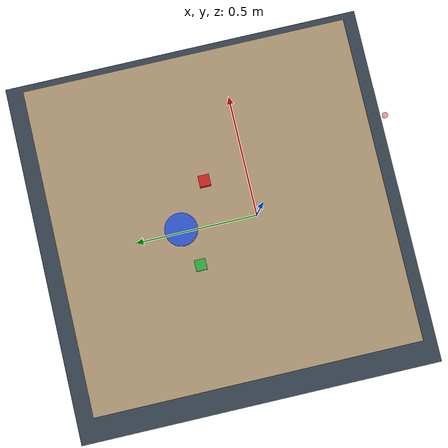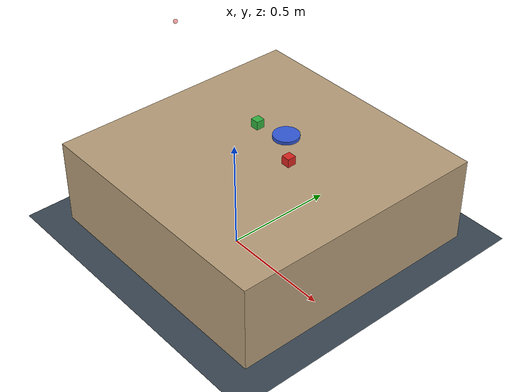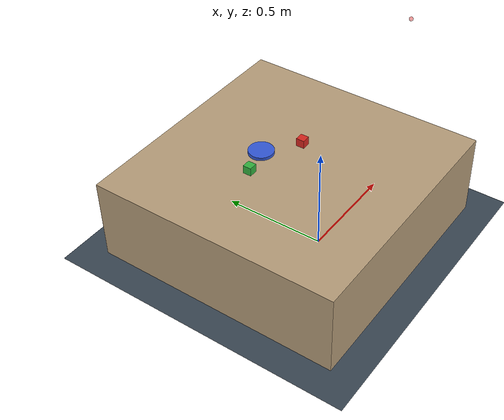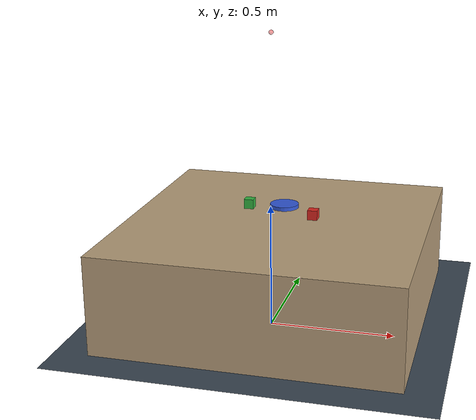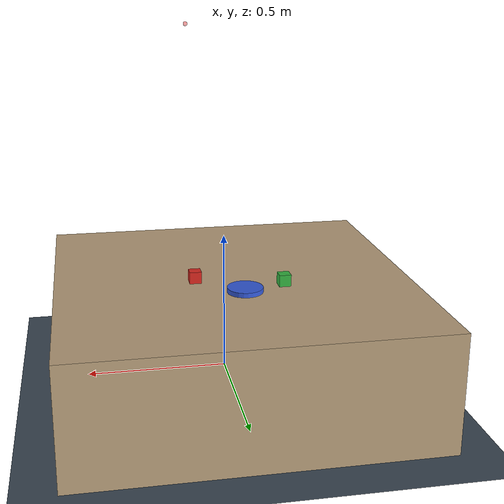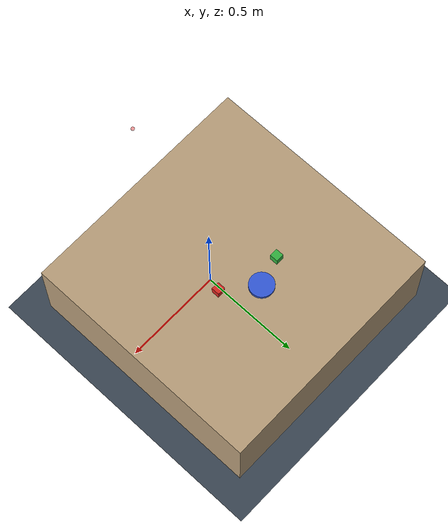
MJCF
<mujoco model="tabletop_panda">
  <compiler angle="radian" autolimits="true" meshdir="panda/assets"/>
  <option timestep="0.002" integrator="implicitfast"/>

  <include file="panda/panda.xml"/>

  <visual>
    <global offwidth="640" offheight="480"/>
    <headlight ambient="0.4 0.4 0.4" diffuse="0.7 0.7 0.7"/>
    <quality shadowsize="2048"/>
  </visual>

  <asset>
    <texture name="grid" type="2d" builtin="checker" rgb1="0.20 0.25 0.30" rgb2="0.25 0.30 0.35"
             width="300" height="300"/>
    <material name="grid" texture="grid" texrepeat="6 6" reflectance="0.05"/>
    <material name="table" rgba="0.72 0.62 0.48 1"/>
  </asset>

  <default>
    <default class="object">
      <geom mass="0.05" friction="1.5 0.1 0.01" solimp="0.97 0.995 0.001"/>
    </default>
  </default>

  <worldbody>
    <light pos="0.3 -0.4 1.9" dir="-0.2 0.3 -1" diffuse="0.8 0.8 0.8"/>
    <geom name="floor" type="plane" size="3 3 0.05" material="grid"/>

    <!-- Surface at z=0.40, matching the workspace the task family is written against. -->
    <geom name="table" type="box" size="0.60 0.60 0.20" pos="0 0.15 0.20" material="table"/>

    <camera name="front" pos="0 0.02 1.42" xyaxes="1 0 0  0 0.966 0.259" fovy="52"/>

    <body name="red_cube" pos="0.13 0.18 0.42">
      <freejoint name="red_cube"/>
      <geom class="object" name="red_cube" type="box" size="0.02 0.02 0.02" rgba="0.85 0.15 0.12 1"/>
    </body>

    <body name="green_cube" pos="-0.16 0.26 0.42">
      <freejoint name="green_cube"/>
      <geom class="object" name="green_cube" type="box" size="0.02 0.02 0.02" rgba="0.20 0.70 0.25 1"/>
    </body>

    <body name="blue_plate" pos="-0.02 0.30 0.408">
      <freejoint name="blue_plate"/>
      <geom class="object" name="blue_plate" type="cylinder" size="0.06 0.008"
            rgba="0.20 0.35 0.85 1" mass="0.3"/>
    </body>
  </worldbody>

  <keyframe>
    <key name="home"
         qpos="1.5708 -0.35 0 -2.20 0 1.90 0.785  0.04 0.04
               0.13 0.18 0.42 1 0 0 0
               -0.16 0.26 0.42 1 0 0 0
               -0.02 0.30 0.408 1 0 0 0"
         ctrl="1.5708 -0.35 0 -2.20 0 1.90 0.785  255"/>
  </keyframe>
</mujoco>

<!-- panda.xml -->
<mujoco model="panda">
  <option integrator="implicitfast" />
  <default>
    <default class="panda">
      <material specular="0.5" shininess="0.25" />
      <joint armature="0.1" damping="1" axis="0 0 1" range="-2.8973 2.8973" />
      <general dyntype="none" biastype="affine" ctrlrange="-2.8973 2.8973" forcerange="-87 87" />
      <default class="finger">
        <joint axis="0 1 0" type="slide" range="0 0.04" damping="20" />
      </default>
      <default class="visual">
        <geom type="mesh" contype="0" conaffinity="0" group="2" />
      </default>
      <default class="collision">
        <geom type="mesh" group="3" />
        <default class="fingertip_pad_collision_1">
          <geom type="box" size="0.0085 0.004 0.0085" pos="0 0.0055 0.0445" friction="2.5 0.2 0.01" solimp="0.97 0.995 0.001" />
        </default>
        <default class="fingertip_pad_collision_2">
          <geom type="box" size="0.003 0.002 0.003" pos="0.0055 0.002 0.05" friction="2.5 0.2 0.01" solimp="0.97 0.995 0.001" />
        </default>
        <default class="fingertip_pad_collision_3">
          <geom type="box" size="0.003 0.002 0.003" pos="-0.0055 0.002 0.05" friction="2.5 0.2 0.01" solimp="0.97 0.995 0.001" />
        </default>
        <default class="fingertip_pad_collision_4">
          <geom type="box" size="0.003 0.002 0.0035" pos="0.0055 0.002 0.0395" friction="2.5 0.2 0.01" solimp="0.97 0.995 0.001" />
        </default>
        <default class="fingertip_pad_collision_5">
          <geom type="box" size="0.003 0.002 0.0035" pos="-0.0055 0.002 0.0395" friction="2.5 0.2 0.01" solimp="0.97 0.995 0.001" />
        </default>
      </default>
    </default>
  </default>
  <asset>
    <material class="panda" name="white" rgba="1 1 1 1" />
    <material class="panda" name="off_white" rgba="0.901961 0.921569 0.929412 1" />
    <material class="panda" name="black" rgba="0.25 0.25 0.25 1" />
    <material class="panda" name="green" rgba="0 1 0 1" />
    <material class="panda" name="light_blue" rgba="0.039216 0.541176 0.780392 1" />
    <mesh name="link0_c" file="link0.stl" />
    <mesh name="link1_c" file="link1.stl" />
    <mesh name="link2_c" file="link2.stl" />
    <mesh name="link3_c" file="link3.stl" />
    <mesh name="link4_c" file="link4.stl" />
    <mesh name="link5_c0" file="link5_collision_0.obj" />
    <mesh name="link5_c1" file="link5_collision_1.obj" />
    <mesh name="link5_c2" file="link5_collision_2.obj" />
    <mesh name="link6_c" file="link6.stl" />
    <mesh name="link7_c" file="link7.stl" />
    <mesh name="hand_c" file="hand.stl" />
    <mesh file="finger_0.obj" />
  </asset>
  <worldbody>
    <body name="link0" childclass="panda" pos="0 -0.32 0.40">
      <inertial mass="0.629769" pos="-0.041018 -0.00014 0.049974" fullinertia="0.00315 0.00388 0.004285 8.2904e-7 0.00015 8.2299e-6" />
      <geom mesh="link0_c" class="collision" />
      <body name="link1" pos="0 0 0.333">
        <inertial mass="4.970684" pos="0.003875 0.002081 -0.04762" fullinertia="0.70337 0.70661 0.0091170 -0.00013900 0.0067720 0.019169" />
        <joint name="joint1" />
        <geom mesh="link1_c" class="collision" />
        <body name="link2" quat="1 -1 0 0">
          <inertial mass="0.646926" pos="-0.003141 -0.02872 0.003495" fullinertia="0.0079620 2.8110e-2 2.5995e-2 -3.925e-3 1.0254e-2 7.04e-4" />
          <joint name="joint2" range="-1.7628 1.7628" />
          <geom mesh="link2_c" class="collision" />
          <body name="link3" pos="0 -0.316 0" quat="1 1 0 0">
            <joint name="joint3" />
            <inertial mass="3.228604" pos="2.7518e-2 3.9252e-2 -6.6502e-2" fullinertia="3.7242e-2 3.6155e-2 1.083e-2 -4.761e-3 -1.1396e-2 -1.2805e-2" />
            <geom mesh="link3_c" class="collision" />
            <body name="link4" pos="0.0825 0 0" quat="1 1 0 0">
              <inertial mass="3.587895" pos="-5.317e-2 1.04419e-1 2.7454e-2" fullinertia="2.5853e-2 1.9552e-2 2.8323e-2 7.796e-3 -1.332e-3 8.641e-3" />
              <joint name="joint4" range="-3.0718 -0.0698" />
              <geom mesh="link4_c" class="collision" />
              <body name="link5" pos="-0.0825 0.384 0" quat="1 -1 0 0">
                <inertial mass="1.225946" pos="-1.1953e-2 4.1065e-2 -3.8437e-2" fullinertia="3.5549e-2 2.9474e-2 8.627e-3 -2.117e-3 -4.037e-3 2.29e-4" />
                <joint name="joint5" />
                <geom mesh="link5_c0" class="collision" />
                <geom mesh="link5_c1" class="collision" />
                <geom mesh="link5_c2" class="collision" />
                <body name="link6" quat="1 1 0 0">
                  <inertial mass="1.666555" pos="6.0149e-2 -1.4117e-2 -1.0517e-2" fullinertia="1.964e-3 4.354e-3 5.433e-3 1.09e-4 -1.158e-3 3.41e-4" />
                  <joint name="joint6" range="-0.0175 3.7525" />
                  <geom mesh="link6_c" class="collision" />
                  <body name="link7" pos="0.088 0 0" quat="1 1 0 0">
                    <inertial mass="7.35522e-01" pos="1.0517e-2 -4.252e-3 6.1597e-2" fullinertia="1.2516e-2 1.0027e-2 4.815e-3 -4.28e-4 -1.196e-3 -7.41e-4" />
                    <joint name="joint7" />
                    <geom mesh="link7_c" class="collision" />
                    <body name="hand" pos="0 0 0.107" quat="0.9238795 0 0 -0.3826834">
                      <inertial mass="0.73" pos="-0.01 0 0.03" diaginertia="0.001 0.0025 0.0017" />
                      <geom mesh="hand_c" class="collision" />
                      <body name="left_finger" pos="0 0 0.0584">
                        <inertial mass="0.015" pos="0 0 0" diaginertia="2.375e-6 2.375e-6 7.5e-7" />
                        <joint name="finger_joint1" class="finger" />
                        <geom mesh="finger_0" class="collision" />
                        <geom class="fingertip_pad_collision_1" />
                        <geom class="fingertip_pad_collision_2" />
                        <geom class="fingertip_pad_collision_3" />
                        <geom class="fingertip_pad_collision_4" />
                        <geom class="fingertip_pad_collision_5" />
                      </body>
                      <body name="right_finger" pos="0 0 0.0584" quat="0 0 0 1">
                        <inertial mass="0.015" pos="0 0 0" diaginertia="2.375e-6 2.375e-6 7.5e-7" />
                        <joint name="finger_joint2" class="finger" />
                        <geom mesh="finger_0" class="collision" />
                        <geom class="fingertip_pad_collision_1" />
                        <geom class="fingertip_pad_collision_2" />
                        <geom class="fingertip_pad_collision_3" />
                        <geom class="fingertip_pad_collision_4" />
                        <geom class="fingertip_pad_collision_5" />
                      </body>
                      <site name="grasp" pos="0 0 0.1034" size="0.008" rgba="1 0 0 0.4" />
                    </body>
                  </body>
                </body>
              </body>
            </body>
          </body>
        </body>
      </body>
    </body>
  </worldbody>
  <tendon>
    <fixed name="split">
      <joint joint="finger_joint1" coef="0.5" />
      <joint joint="finger_joint2" coef="0.5" />
    </fixed>
  </tendon>
  <equality>
    <joint joint1="finger_joint1" joint2="finger_joint2" solimp="0.95 0.99 0.001" solref="0.005 1" />
  </equality>
  <actuator>
    <general class="panda" name="actuator1" joint="joint1" gainprm="4500" biasprm="0 -4500 -450" />
    <general class="panda" name="actuator2" joint="joint2" gainprm="4500" biasprm="0 -4500 -450" ctrlrange="-1.7628 1.7628" />
    <general class="panda" name="actuator3" joint="joint3" gainprm="3500" biasprm="0 -3500 -350" />
    <general class="panda" name="actuator4" joint="joint4" gainprm="3500" biasprm="0 -3500 -350" ctrlrange="-3.0718 -0.0698" />
    <general class="panda" name="actuator5" joint="joint5" gainprm="2000" biasprm="0 -2000 -200" forcerange="-12 12" />
    <general class="panda" name="actuator6" joint="joint6" gainprm="2000" biasprm="0 -2000 -200" forcerange="-12 12" ctrlrange="-0.0175 3.7525" />
    <general class="panda" name="actuator7" joint="joint7" gainprm="2000" biasprm="0 -2000 -200" forcerange="-12 12" />
    <general class="panda" name="actuator8" tendon="split" forcerange="-100 100" ctrlrange="0 255" gainprm="0.01568627451 0 0" biasprm="0 -100 -10" />
  </actuator>
  <contact>
    <exclude body1="link0" body2="link1" />
  </contact>
</mujoco>
